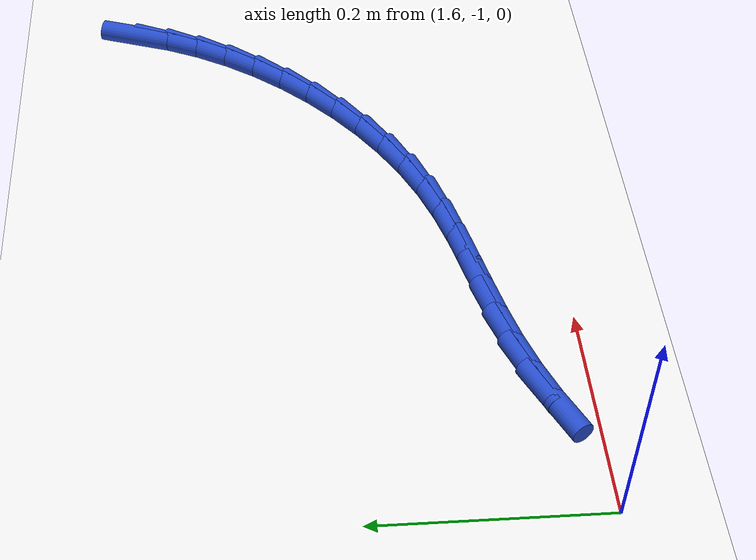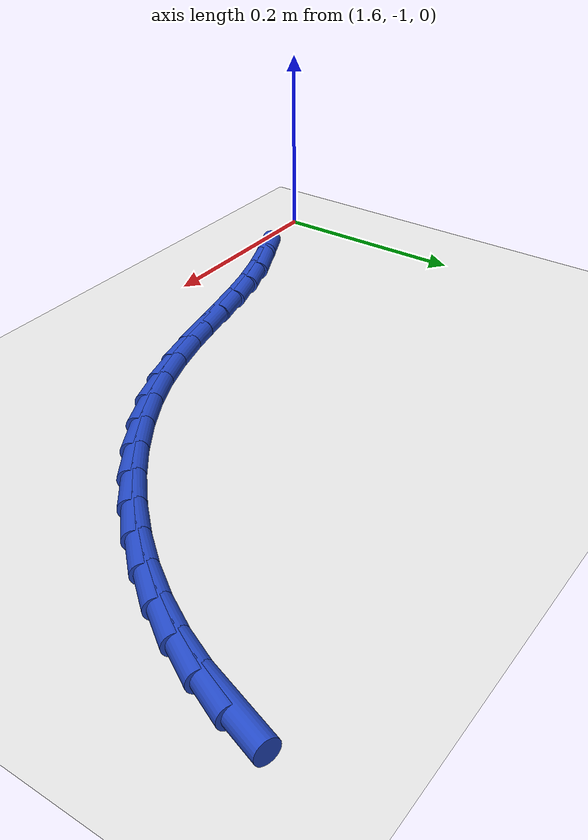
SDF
<sdf version="1.6">
 <world name="default">
  <model name="ground_plane">
   <static>1</static>
   <link name="link">
    <collision name="collision">
     <geometry><plane><normal>0 0 1</normal><size>100 100</size></plane></geometry>
     <surface><friction><ode><mu>100</mu><mu2>50</mu2></ode></friction></surface>
    </collision>
    <visual name="visual">
     <cast_shadows>0</cast_shadows>
     <geometry><plane><normal>0 0 1</normal><size>100 100</size></plane></geometry>
     <material>
      <script><uri>file://media/materials/scripts/gazebo.material</uri><name>Gazebo/WhiteGlow</name></script>
     </material>
    </visual>
   </link>
  </model>
  <model name="line">
   <link name="link_133">
    <pose>2.204810192750947 -0.61706934498591 0.01 0 1.57 1.2480083890624885</pose>
    <collision name="collision">
     <geometry><cylinder><radius>0.01</radius><length>0.08</length></cylinder></geometry>
    </collision>
    <visual name="visual">
     <material>
      <script><name>Gazebo/Blue</name><uri>file://media/materials/scripts/gazebo.material</uri></script>
     </material>
     <geometry><cylinder><radius>0.01</radius><length>0.08</length></cylinder></geometry>
    </visual>
   </link>
   <link name="link_134">
    <pose>2.194370152473837 -0.6482814985507573 0.01 0 1.57 1.1535543794396095</pose>
    <collision name="collision">
     <geometry><cylinder><radius>0.01</radius><length>0.08</length></cylinder></geometry>
    </collision>
    <visual name="visual">
     <material>
      <script><name>Gazebo/Blue</name><uri>file://media/materials/scripts/gazebo.material</uri></script>
     </material>
     <geometry><cylinder><radius>0.01</radius><length>0.08</length></cylinder></geometry>
    </visual>
   </link>
   <link name="link_135">
    <pose>2.180800125530896 -0.6788950571371533 0.01 0 1.57 1.0659356280338865</pose>
    <collision name="collision">
     <geometry><cylinder><radius>0.01</radius><length>0.08</length></cylinder></geometry>
    </collision>
    <visual name="visual">
     <material>
      <script><name>Gazebo/Blue</name><uri>file://media/materials/scripts/gazebo.material</uri></script>
     </material>
     <geometry><cylinder><radius>0.01</radius><length>0.08</length></cylinder></geometry>
    </visual>
   </link>
   <link name="link_136">
    <pose>2.1643436461153964 -0.7086734957929484 0.01 0 1.57 0.9837219342574584</pose>
    <collision name="collision">
     <geometry><cylinder><radius>0.01</radius><length>0.08</length></cylinder></geometry>
    </collision>
    <visual name="visual">
     <material>
      <script><name>Gazebo/Blue</name><uri>file://media/materials/scripts/gazebo.material</uri></script>
     </material>
     <geometry><cylinder><radius>0.01</radius><length>0.08</length></cylinder></geometry>
    </visual>
   </link>
   <link name="link_137">
    <pose>2.1452442484206093 -0.7373802895659948 0.01 0 1.57 0.905475274394386</pose>
    <collision name="collision">
     <geometry><cylinder><radius>0.01</radius><length>0.08</length></cylinder></geometry>
    </collision>
    <visual name="visual">
     <material>
      <script><name>Gazebo/Blue</name><uri>file://media/materials/scripts/gazebo.material</uri></script>
     </material>
     <geometry><cylinder><radius>0.01</radius><length>0.08</length></cylinder></geometry>
    </visual>
   </link>
   <link name="link_138">
    <pose>2.1237454666398046 -0.7647789135041441 0.01 0 1.57 0.8297915466717884</pose>
    <collision name="collision">
     <geometry><cylinder><radius>0.01</radius><length>0.08</length></cylinder></geometry>
    </collision>
    <visual name="visual">
     <material>
      <script><name>Gazebo/Blue</name><uri>file://media/materials/scripts/gazebo.material</uri></script>
     </material>
     <geometry><cylinder><radius>0.01</radius><length>0.08</length></cylinder></geometry>
    </visual>
   </link>
   <link name="link_139">
    <pose>2.100090834966254 -0.790632842655248 0.01 0 1.57 0.7553055522210189</pose>
    <collision name="collision">
     <geometry><cylinder><radius>0.01</radius><length>0.08</length></cylinder></geometry>
    </collision>
    <visual name="visual">
     <material>
      <script><name>Gazebo/Blue</name><uri>file://media/materials/scripts/gazebo.material</uri></script>
     </material>
     <geometry><cylinder><radius>0.01</radius><length>0.08</length></cylinder></geometry>
    </visual>
   </link>
   <link name="link_140">
    <pose>2.0745238875932275 -0.8147055520671589 0.01 0 1.57 0.6806763313901121</pose>
    <collision name="collision">
     <geometry><cylinder><radius>0.01</radius><length>0.08</length></cylinder></geometry>
    </collision>
    <visual name="visual">
     <material>
      <script><name>Gazebo/Blue</name><uri>file://media/materials/scripts/gazebo.material</uri></script>
     </material>
     <geometry><cylinder><radius>0.01</radius><length>0.08</length></cylinder></geometry>
    </visual>
   </link>
   <link name="link_141">
    <pose>2.047288158713996 -0.836760516787727 0.01 0 1.57 0.6045647242669799</pose>
    <collision name="collision">
     <geometry><cylinder><radius>0.01</radius><length>0.08</length></cylinder></geometry>
    </collision>
    <visual name="visual">
     <material>
      <script><name>Gazebo/Blue</name><uri>file://media/materials/scripts/gazebo.material</uri></script>
     </material>
     <geometry><cylinder><radius>0.01</radius><length>0.08</length></cylinder></geometry>
    </visual>
   </link>
   <link name="link_142">
    <pose>2.018627182521832 -0.8565612118648048 0.01 0 1.57 0.5256123946306682</pose>
    <collision name="collision">
     <geometry><cylinder><radius>0.01</radius><length>0.08</length></cylinder></geometry>
    </collision>
    <visual name="visual">
     <material>
      <script><name>Gazebo/Blue</name><uri>file://media/materials/scripts/gazebo.material</uri></script>
     </material>
     <geometry><cylinder><radius>0.01</radius><length>0.08</length></cylinder></geometry>
    </visual>
   </link>
   <link name="link_143">
    <pose>1.9887844932100047 -0.8738711123462438 0.01 0 1.57 0.4424317914204955</pose>
    <collision name="collision">
     <geometry><cylinder><radius>0.01</radius><length>0.08</length></cylinder></geometry>
    </collision>
    <visual name="visual">
     <material>
      <script><name>Gazebo/Blue</name><uri>file://media/materials/scripts/gazebo.material</uri></script>
     </material>
     <geometry><cylinder><radius>0.01</radius><length>0.08</length></cylinder></geometry>
    </visual>
   </link>
   <link name="link_144">
    <pose>1.9580036249717847 -0.888453693279896 0.01 0 1.57 0.35674948571369935</pose>
    <collision name="collision">
     <geometry><cylinder><radius>0.01</radius><length>0.08</length></cylinder></geometry>
    </collision>
    <visual name="visual">
     <material>
      <script><name>Gazebo/Blue</name><uri>file://media/materials/scripts/gazebo.material</uri></script>
     </material>
     <geometry><cylinder><radius>0.01</radius><length>0.08</length></cylinder></geometry>
    </visual>
   </link>
   <link name="link_145">
    <pose>1.926525718112485 -0.9001853936198289 0.01 0 1.57 0.2878002750214742</pose>
    <collision name="collision">
     <geometry><cylinder><radius>0.01</radius><length>0.08</length></cylinder></geometry>
    </collision>
    <visual name="visual">
     <material>
      <script><name>Gazebo/Blue</name><uri>file://media/materials/scripts/gazebo.material</uri></script>
     </material>
     <geometry><cylinder><radius>0.01</radius><length>0.08</length></cylinder></geometry>
    </visual>
   </link>
   <link name="link_146">
    <pose>1.8945770758755314 -0.9096427905453355 0.01 0 1.57 0.24433156073230353</pose>
    <collision name="collision">
     <geometry><cylinder><radius>0.01</radius><length>0.08</length></cylinder></geometry>
    </collision>
    <visual name="visual">
     <material>
      <script><name>Gazebo/Blue</name><uri>file://media/materials/scripts/gazebo.material</uri></script>
     </material>
     <geometry><cylinder><radius>0.01</radius><length>0.08</length></cylinder></geometry>
    </visual>
   </link>
   <link name="link_147">
    <pose>1.862378324639353 -0.9176703438000303 0.01 0 1.57 0.22695859954760325</pose>
    <collision name="collision">
     <geometry><cylinder><radius>0.01</radius><length>0.08</length></cylinder></geometry>
    </collision>
    <visual name="visual">
     <material>
      <script><name>Gazebo/Blue</name><uri>file://media/materials/scripts/gazebo.material</uri></script>
     </material>
     <geometry><cylinder><radius>0.01</radius><length>0.08</length></cylinder></geometry>
    </visual>
   </link>
   <link name="link_148">
    <pose>1.8301500793188679 -0.925113054072999 0.01 0 1.57 0.2359568965290859</pose>
    <collision name="collision">
     <geometry><cylinder><radius>0.01</radius><length>0.08</length></cylinder></geometry>
    </collision>
    <visual name="visual">
     <material>
      <script><name>Gazebo/Blue</name><uri>file://media/materials/scripts/gazebo.material</uri></script>
     </material>
     <geometry><cylinder><radius>0.01</radius><length>0.08</length></cylinder></geometry>
    </visual>
   </link>
   <link name="link_149">
    <pose>1.798112954828996 -0.9328159220533266 0.01 0 1.57 0.27162764758295255</pose>
    <collision name="collision">
     <geometry><cylinder><radius>0.01</radius><length>0.08</length></cylinder></geometry>
    </collision>
    <visual name="visual">
     <material>
      <script><name>Gazebo/Blue</name><uri>file://media/materials/scripts/gazebo.material</uri></script>
     </material>
     <geometry><cylinder><radius>0.01</radius><length>0.08</length></cylinder></geometry>
    </visual>
   </link>
   <link name="link_150">
    <pose>1.7664875660846557 -0.941623948430099 0.01 0 1.57 0.33024111889854474</pose>
    <collision name="collision">
     <geometry><cylinder><radius>0.01</radius><length>0.08</length></cylinder></geometry>
    </collision>
    <visual name="visual">
     <material>
      <script><name>Gazebo/Blue</name><uri>file://media/materials/scripts/gazebo.material</uri></script>
     </material>
     <geometry><cylinder><radius>0.01</radius><length>0.08</length></cylinder></geometry>
    </visual>
   </link>
   <link name="link_151">
    <pose>1.7354712134079764 -0.9522561772583726 0.01 0 1.57 0.39315387545985664</pose>
    <collision name="collision">
     <geometry><cylinder><radius>0.01</radius><length>0.08</length></cylinder></geometry>
    </collision>
    <visual name="visual">
     <material>
      <script><name>Gazebo/Blue</name><uri>file://media/materials/scripts/gazebo.material</uri></script>
     </material>
     <geometry><cylinder><radius>0.01</radius><length>0.08</length></cylinder></geometry>
    </visual>
   </link>
   <link name="link_152">
    <pose>1.7051501515647314 -0.9648317311350397 0.01 0 1.57 0.4547710693246998</pose>
    <collision name="collision">
     <geometry><cylinder><radius>0.01</radius><length>0.08</length></cylinder></geometry>
    </collision>
    <visual name="visual">
     <material>
      <script><name>Gazebo/Blue</name><uri>file://media/materials/scripts/gazebo.material</uri></script>
     </material>
     <geometry><cylinder><radius>0.01</radius><length>0.08</length></cylinder></geometry>
    </visual>
   </link>
  </model>
 </world>
</sdf>
